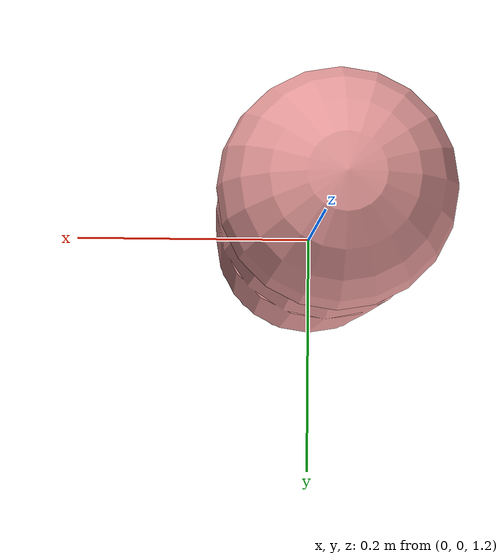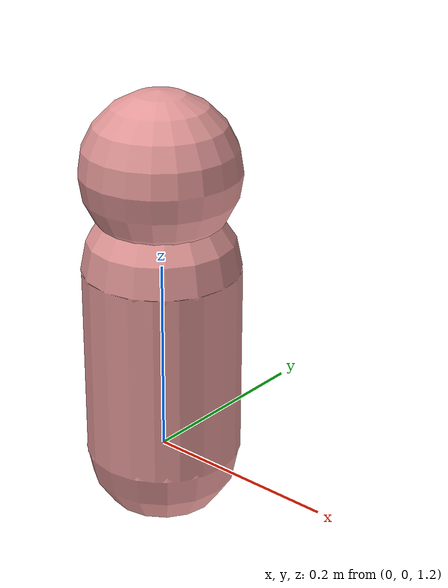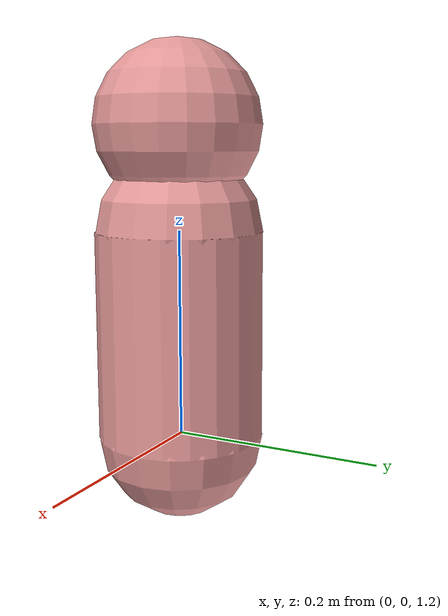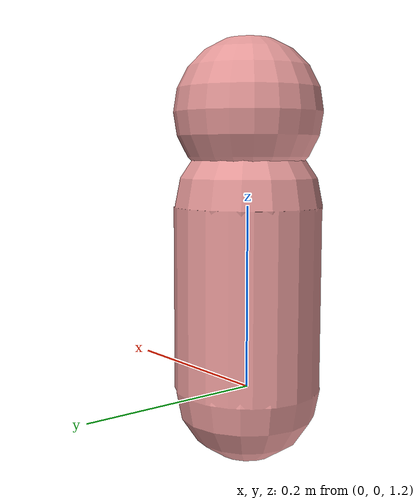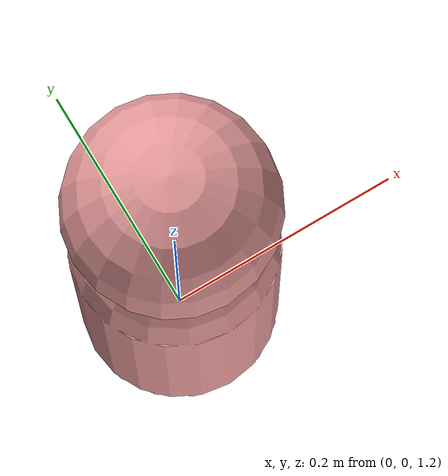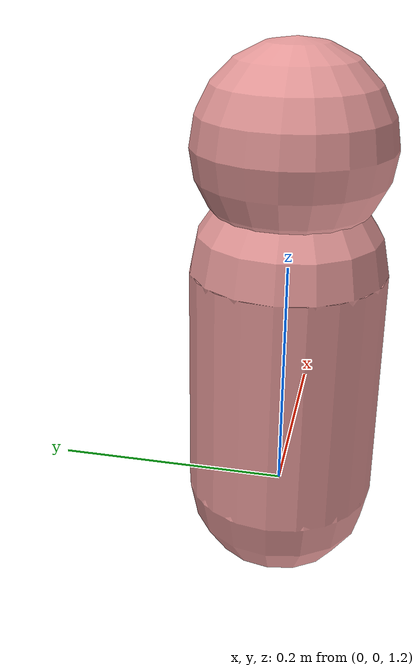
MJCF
<mujoco model="humanoid_custom">
    <compiler angle="degree" coordinate="local" inertiafromgeom="true"/>
    <option timestep="0.005" iterations="50" tolerance="1e-4" solver="Newton" jacobian="dense" cone="pyramidal"/>

    <size nconmax="500" njmax="1000"/>

    <default>
        <joint armature="1" damping="1" limited="true"/>
        <geom friction="1 0.5 0.5" density="1000" margin="0.01" condim="3"/>
        <motor ctrlrange="-1 1" ctrllimited="true" gear="100"/>
    </default>

    <worldbody>
        <light directional="true" pos="0 0 3" dir="0 0 -1" diffuse="0.8 0.8 0.8" specular="0.2 0.2 0.2"/>
        <geom name="floor" type="plane" size="10 10 0.1" rgba="0.8 0.9 0.8 1" condim="3"/>

        <!-- Highly structured contact dynamic profile for a high-degree-of-freedom robotic system -->
        <body name="torso" pos="0 0 1.2">
            <joint name="root" type="free" limited="false"/>
            <geom name="torso_geom" type="capsule" size="0.08" fromto="0 0 0 0 0 0.2" rgba="0.9 0.6 0.6 1"/>

            <body name="head" pos="0 0 0.3">
                <joint name="neck" type="hinge" axis="1 0 0" range="-45 45"/>
                <geom name="head_geom" type="sphere" size="0.08" rgba="0.9 0.6 0.6 1"/>
            </body>

            <!-- Additional limbs (arms, legs) would be defined here with specific friction and mass modifiers -->
            <!-- Simulated 28-DOF mapping required for DeepMimic complex acrobatic turns -->
        </body>
    </worldbody>

    <actuator>
        <!-- Motor configurations for the 28-DOF asset -->
        <motor name="neck_motor" joint="neck" gear="20"/>
    </actuator>
</mujoco>
